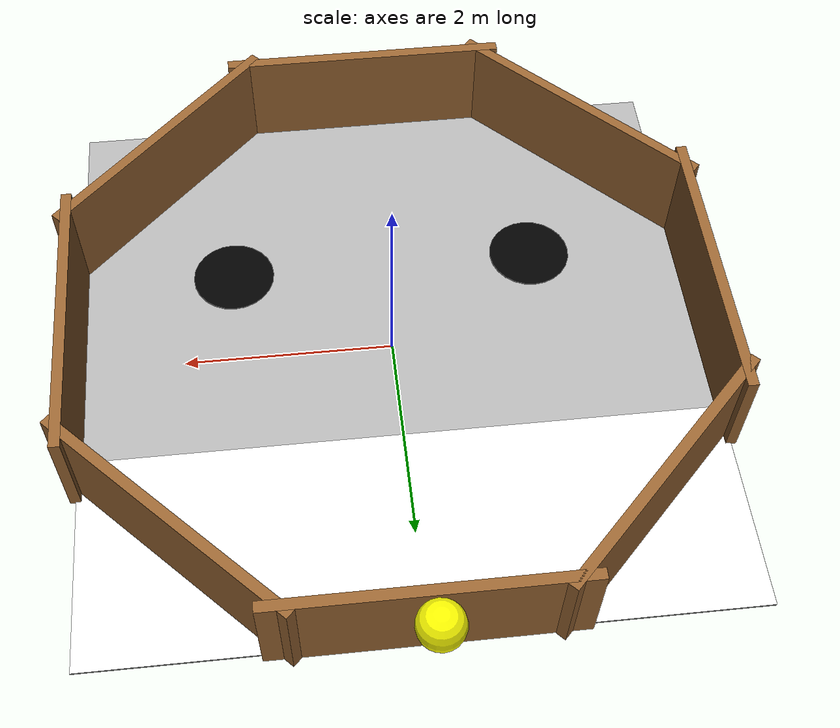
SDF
<?xml version='1.0' encoding='ASCII'?>
<sdf version='1.7'>
  <world name='mission'>

    <physics type="ode">
      <max_step_size>0.05</max_step_size>
      <real_time_factor>10.0</real_time_factor>
    </physics>

    <!-- Lighting -->
    <scene>
      <ambient>1 1 1 1</ambient>
      <background>1 1 1 1</background>
      <shadows>0</shadows>
      <grid>false</grid>
    </scene>

    <plugin name="gz::sim::systems::Physics" filename="gz-sim-physics-system" />
    <plugin name="gz::sim::systems::UserCommands" filename="gz-sim-user-commands-system" />
    <plugin name="gz::sim::systems::SceneBroadcaster" filename="gz-sim-scene-broadcaster-system" />
    <plugin name="gz::sim::systems::Contact" filename="gz-sim-contact-system" />
    <plugin name="gz::sim::systems::Sensors" filename="gz-sim-sensors-system">
        <render_engine>ogre2</render_engine>
    </plugin>

    <!-- Grey floor -->
    <model name="floor">
      <static>true</static>
      <pose>0 0 0 0 0 0</pose>
      <link name="link">
        <visual name="visual">
          <geometry>
            <box>
              <size>6 6 0.01</size> <!-- 6x6 m arena -->
            </box>
          </geometry>
          <material>
            <ambient>0.7 0.7 0.7 1</ambient>
            <diffuse>0.7 0.7 0.7 1</diffuse>
          </material>
        </visual>
        <collision name="collision">
          <geometry>
            <box>
              <size>6 6 0.01</size>
            </box>
          </geometry>
        </collision>
      </link>
    </model>

    <!-- White patch on one half -->
    <model name="white_patch">
      <static>true</static>
      <pose>0 2 0.011 0 0 0</pose> <!-- Slightly above floor -->
      <link name="link">
        <visual name="visual">
          <geometry>
            <box>
              <size>6 2 0.01</size>
            </box>
          </geometry>
          <material>
            <ambient>1 1 1 1</ambient>
            <diffuse>1 1 1 1</diffuse>
          </material>
        </visual>
      </link>
    </model>

    <!-- Two black circular patches -->
    <model name="black_patch1">
      <static>true</static>
      <pose>-1.5 -1.0 0.011 0 0 0</pose>
      <link name="link">
        <visual name="visual">
          <geometry>
            <cylinder>
              <radius>0.4</radius>
              <length>0.01</length>
            </cylinder>
          </geometry>
          <material>
            <ambient>0 0 0 1</ambient>
            <diffuse>0 0 0 1</diffuse>
          </material>
        </visual>
      </link>
    </model>

    <model name="black_patch2">
      <static>true</static>
      <pose>1.5 -1.0 0.011 0 0 0</pose>
      <link name="link">
        <visual name="visual">
          <geometry>
            <cylinder>
              <radius>0.4</radius>
              <length>0.01</length>
            </cylinder>
          </geometry>
          <material>
            <ambient>0 0 0 1</ambient>
            <diffuse>0 0 0 1</diffuse>
          </material>
        </visual>
      </link>
    </model>

    <!-- Light source -->
    <model name="light_marker">
      <static>true</static>
      <pose>0 3.5 1.5 0 0 0</pose> <!-- above white patch -->
      <link name="link">
        <visual name="visual">
          <geometry>
            <sphere>
              <radius>0.2</radius>
            </sphere>
          </geometry>
          <material>
            <ambient>1 1 0 1</ambient>
            <diffuse>1 1 0 1</diffuse>
          </material>
        </visual>
      </link>
    </model>

    <!-- Octagonal walls -->
    <!-- Each wall = box, rotated into octagon -->
    <model name="walls">
      <static>true</static>
      <link name="link">
        <!-- Define 8 walls -->
        <!-- North -->
        <visual name="wall_n">
          <pose>0 3 0.5 0 0 0</pose>
          <geometry><box><size>2.8 0.1 1</size></box></geometry>
          <material><ambient>0.6 0.4 0.2 1</ambient><diffuse>0.6 0.4 0.2 1</diffuse></material>
        </visual>
        <collision name="wall_n_col">
          <pose>0 3 0.5 0 0 0</pose>
          <geometry><box><size>2.8 0.1 1</size></box></geometry>
        </collision>

        <!-- NE -->
        <visual name="wall_ne">
          <pose>2.1 2.1 0.5 0 0 -0.785</pose>
          <geometry><box><size>2.8 0.1 1</size></box></geometry>
          <material><ambient>0.6 0.4 0.2 1</ambient><diffuse>0.6 0.4 0.2 1</diffuse></material>
        </visual>
        <collision name="wall_ne_col">
          <pose>2.1 2.1 0.5 0 0 -0.785</pose>
          <geometry><box><size>2.8 0.1 1</size></box></geometry>
        </collision>

        <!-- East -->
        <visual name="wall_e">
          <pose>3 0 0.5 0 0 1.5708</pose>
          <geometry><box><size>2.8 0.1 1</size></box></geometry>
          <material><ambient>0.6 0.4 0.2 1</ambient><diffuse>0.6 0.4 0.2 1</diffuse></material>
        </visual>
        <collision name="wall_e_col">
          <pose>3 0 0.5 0 0 1.5708</pose>
          <geometry><box><size>2.8 0.1 1</size></box></geometry>
        </collision>

        <!-- SE -->
        <visual name="wall_se">
          <pose>2.1 -2.1 0.5 0 0 0.785</pose>
          <geometry><box><size>2.8 0.1 1</size></box></geometry>
          <material><ambient>0.6 0.4 0.2 1</ambient><diffuse>0.6 0.4 0.2 1</diffuse></material>
        </visual>
        <collision name="wall_se_col">
          <pose>2.1 -2.1 0.5 0 0 0.785</pose>
          <geometry><box><size>2.8 0.1 1</size></box></geometry>
        </collision>

        <!-- South -->
        <visual name="wall_s">
          <pose>0 -3 0.5 0 0 0</pose>
          <geometry><box><size>2.8 0.1 1</size></box></geometry>
          <material><ambient>0.6 0.4 0.2 1</ambient><diffuse>0.6 0.4 0.2 1</diffuse></material>
        </visual>
        <collision name="wall_s_col">
          <pose>0 -3 0.5 0 0 0</pose>
          <geometry><box><size>2.8 0.1 1</size></box></geometry>
        </collision>

        <!-- SW -->
        <visual name="wall_sw">
          <pose>-2.1 -2.1 0.5 0 0 -0.785</pose>
          <geometry><box><size>2.8 0.1 1</size></box></geometry>
          <material><ambient>0.6 0.4 0.2 1</ambient><diffuse>0.6 0.4 0.2 1</diffuse></material>
        </visual>
        <collision name="wall_sw_col">
          <pose>-2.1 -2.1 0.5 0 0 -0.785</pose>
          <geometry><box><size>2.8 0.1 1</size></box></geometry>
        </collision>

        <!-- West -->
        <visual name="wall_w">
          <pose>-3 0 0.5 0 0 1.5708</pose>
          <geometry><box><size>2.8 0.1 1</size></box></geometry>
          <material><ambient>0.6 0.4 0.2 1</ambient><diffuse>0.6 0.4 0.2 1</diffuse></material>
        </visual>
        <collision name="wall_w_col">
          <pose>-3 0 0.5 0 0 1.5708</pose>
          <geometry><box><size>2.8 0.1 1</size></box></geometry>
        </collision>

        <!-- NW -->
        <visual name="wall_nw">
          <pose>-2.1 2.1 0.5 0 0 0.785</pose>
          <geometry><box><size>2.8 0.1 1</size></box></geometry>
          <material><ambient>0.6 0.4 0.2 1</ambient><diffuse>0.6 0.4 0.2 1</diffuse></material>
        </visual>
        <collision name="wall_nw_col">
          <pose>-2.1 2.1 0.5 0 0 0.785</pose>
          <geometry><box><size>2.8 0.1 1</size></box></geometry>
        </collision>

      </link>
    </model>

  </world>
</sdf>
